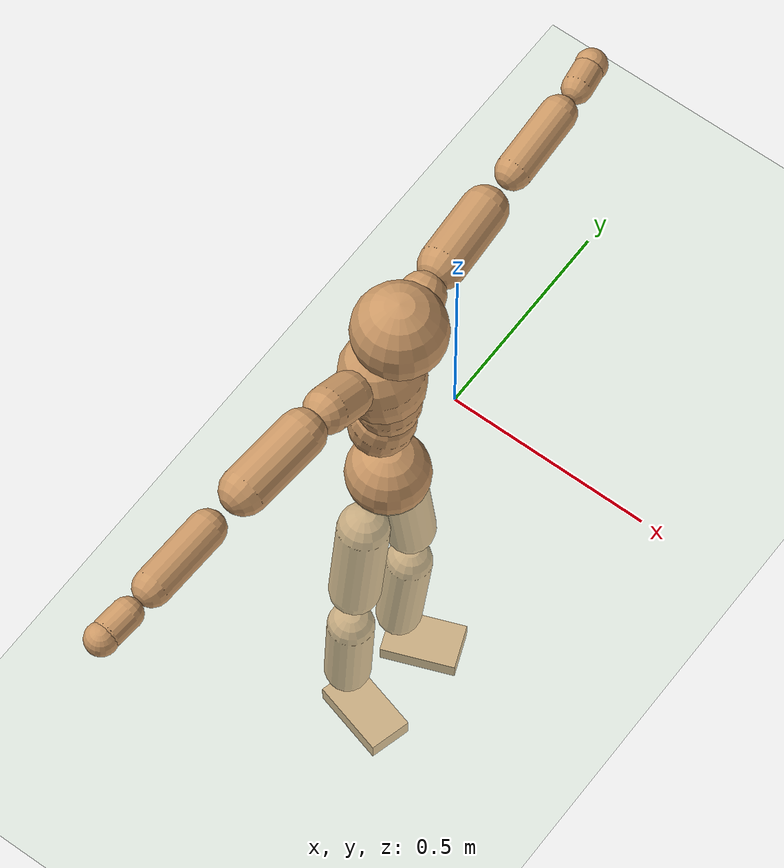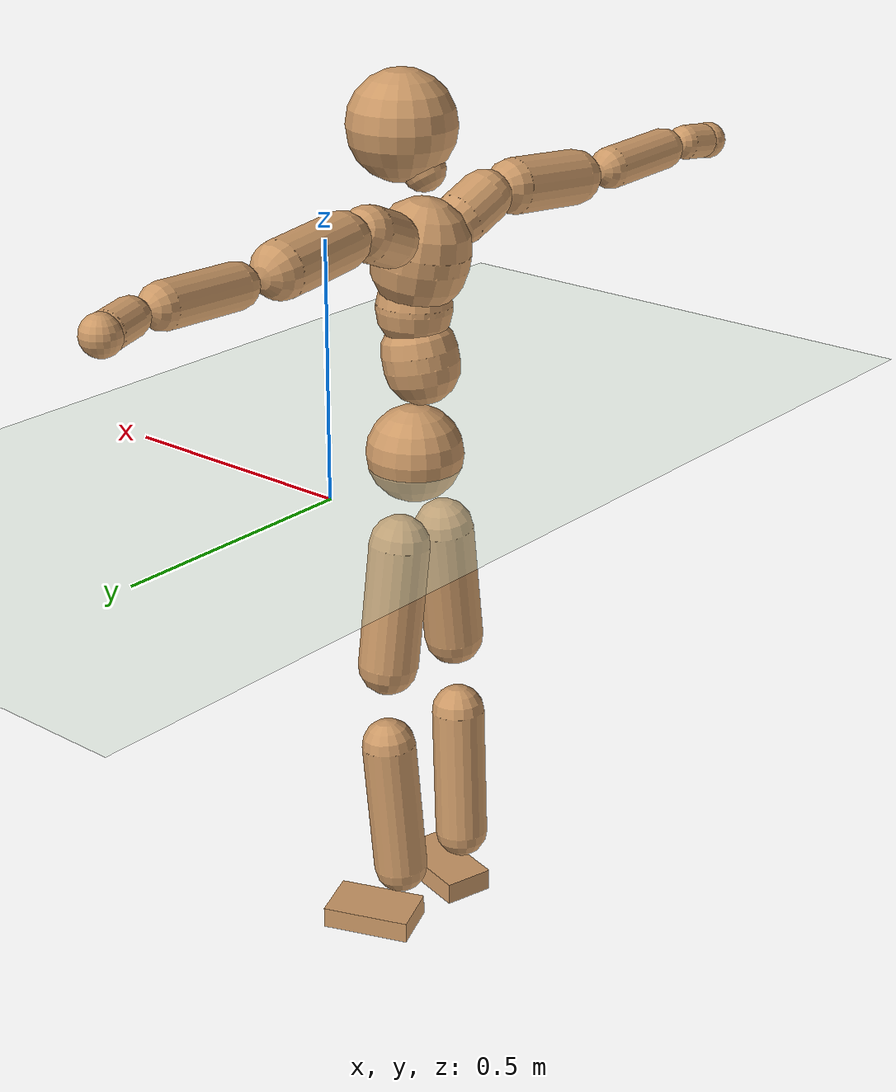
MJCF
<mujoco model="humanoid">
  <compiler coordinate="local"/>
  <default>
    <joint damping="0.0" armature="0.01" stiffness="0.0" limited="true"/>
    <geom conaffinity="1" condim="3" contype="7" margin="0.001" rgba="0.8 0.6 .4 1"/>
  </default>
  <asset>
    <texture type="skybox" builtin="gradient" rgb1=".4 .5 .6" rgb2="0 0 0" width="100" height="100"/>
    <texture builtin="flat" height="1278" mark="cross" markrgb="1 1 1" name="texgeom" random="0.01" rgb1="0.8 0.6 0.4" rgb2="0.8 0.6 0.4" type="cube" width="127"/>
    <texture builtin="checker" height="100" name="texplane" rgb1="0 0 0" rgb2="0.8 0.8 0.8" type="2d" width="100"/>
    <material name="MatPlane" reflectance="0.5" shininess="1" specular="1" texrepeat="60 60" texture="texplane"/>
    <material name="geom" texture="texgeom" texuniform="true"/>
  </asset>
  <worldbody>
    <light cutoff="100" diffuse="1 1 1" dir="-0 0 -1.3" directional="true" exponent="1" pos="0 0 1.3" specular=".1 .1 .1"/>
    <geom conaffinity="1" condim="3" name="floor" pos="0 0 0" rgba="0.8 0.9 0.8 1" size="100 100 .2" type="plane" material="MatPlane"/>
    <body name="Pelvis" pos="-0.0019 -0.2404 0.0233">
      <freejoint name="Pelvis"/>
      <geom type="sphere" contype="1" conaffinity="1" density="500" size="0.0964" pos="0.0000 0.0000 0.0000" name="Pelvis"/>
      <body name="L_Hip" pos="-0.0191 0.0573 -0.0847">
        <joint name="L_Hip_x" type="hinge" pos="0 0 0" axis="1 0 0" stiffness="800" damping="80" armature="0.02" range="-180.0000 180.0000"/>
        <joint name="L_Hip_y" type="hinge" pos="0 0 0" axis="0 1 0" stiffness="800" damping="80" armature="0.02" range="-180.0000 180.0000"/>
        <joint name="L_Hip_z" type="hinge" pos="0 0 0" axis="0 0 1" stiffness="800" damping="80" armature="0.02" range="-180.0000 180.0000"/>
        <geom type="capsule" contype="1" conaffinity="1" density="500" fromto="0.0019 0.0097 -0.0838 0.0078 0.0388 -0.3351" size="0.0605" name="L_Hip"/>
        <body name="L_Knee" pos="0.0097 0.0485 -0.4189">
          <joint name="L_Knee_x" type="hinge" pos="0 0 0" axis="1 0 0" stiffness="800" damping="80" armature="0.02" range="-180.0000 180.0000"/>
          <joint name="L_Knee_y" type="hinge" pos="0 0 0" axis="0 1 0" stiffness="800" damping="80" armature="0.02" range="-180.0000 180.0000"/>
          <joint name="L_Knee_z" type="hinge" pos="0 0 0" axis="0 0 1" stiffness="800" damping="80" armature="0.02" range="-180.0000 180.0000"/>
          <geom type="capsule" contype="1" conaffinity="1" density="500" fromto="-0.0075 -0.0030 -0.0928 -0.0298 -0.0118 -0.3714" size="0.0544" name="L_Knee"/>
          <body name="L_Ankle" pos="-0.0373 -0.0148 -0.4642">
            <joint name="L_Ankle_x" type="hinge" pos="0 0 0" axis="1 0 0" stiffness="800" damping="80" armature="0.02" range="-180.0000 180.0000"/>
            <joint name="L_Ankle_y" type="hinge" pos="0 0 0" axis="0 1 0" stiffness="800" damping="80" armature="0.02" range="-180.0000 180.0000"/>
            <joint name="L_Ankle_z" type="hinge" pos="0 0 0" axis="0 0 1" stiffness="800" damping="80" armature="0.02" range="-180.0000 180.0000"/>
            <geom type="box" contype="1" conaffinity="1" density="500" pos="0.0631 0.0246 -0.0326" size="0.0905 0.056 0.0217" quat="0.9828 0.0000 0.0000 0.1849" name="L_Ankle"/>
            <body name="L_Toe" pos="0.1262 0.0492 -0.0651">
              <joint name="L_Toe_x" type="hinge" pos="0 0 0" axis="1 0 0" stiffness="500" damping="50" armature="0.02" range="-180.0000 180.0000"/>
              <joint name="L_Toe_y" type="hinge" pos="0 0 0" axis="0 1 0" stiffness="500" damping="50" armature="0.02" range="-180.0000 180.0000"/>
              <joint name="L_Toe_z" type="hinge" pos="0 0 0" axis="0 0 1" stiffness="500" damping="50" armature="0.02" range="-180.0000 180.0000"/>
              <geom type="box" contype="1" conaffinity="1" density="500" pos="0.0000 0.0000 0.0334" size="0.0011 0.0026 0.0011" quat="0.9820 0.0000 0.0000 0.1889" name="L_Toe"/>
            </body>
          </body>
        </body>
      </body>
      <body name="R_Hip" pos="-0.0152 -0.0587 -0.0936">
        <joint name="R_Hip_x" type="hinge" pos="0 0 0" axis="1 0 0" stiffness="800" damping="80" armature="0.02" range="-180.0000 180.0000"/>
        <joint name="R_Hip_y" type="hinge" pos="0 0 0" axis="0 1 0" stiffness="800" damping="80" armature="0.02" range="-180.0000 180.0000"/>
        <joint name="R_Hip_z" type="hinge" pos="0 0 0" axis="0 0 1" stiffness="800" damping="80" armature="0.02" range="-180.0000 180.0000"/>
        <geom type="capsule" contype="1" conaffinity="1" density="500" fromto="-0.0009 -0.0100 -0.0830 -0.0037 -0.0400 -0.3321" size="0.0599" name="R_Hip"/>
        <body name="R_Knee" pos="-0.0046 -0.05 -0.4151">
          <joint name="R_Knee_x" type="hinge" pos="0 0 0" axis="1 0 0" stiffness="800" damping="80" armature="0.02" range="-180.0000 180.0000"/>
          <joint name="R_Knee_y" type="hinge" pos="0 0 0" axis="0 1 0" stiffness="800" damping="80" armature="0.02" range="-180.0000 180.0000"/>
          <joint name="R_Knee_z" type="hinge" pos="0 0 0" axis="0 0 1" stiffness="800" damping="80" armature="0.02" range="-180.0000 180.0000"/>
          <geom type="capsule" contype="1" conaffinity="1" density="500" fromto="-0.0069 0.0039 -0.0915 -0.0275 0.0157 -0.3659" size="0.0547" name="R_Knee"/>
          <body name="R_Ankle" pos="-0.0344 0.0197 -0.4574">
            <joint name="R_Ankle_x" type="hinge" pos="0 0 0" axis="1 0 0" stiffness="800" damping="80" armature="0.02" range="-180.0000 180.0000"/>
            <joint name="R_Ankle_y" type="hinge" pos="0 0 0" axis="0 1 0" stiffness="800" damping="80" armature="0.02" range="-180.0000 180.0000"/>
            <joint name="R_Ankle_z" type="hinge" pos="0 0 0" axis="0 0 1" stiffness="800" damping="80" armature="0.02" range="-180.0000 180.0000"/>
            <geom type="box" contype="1" conaffinity="1" density="500" pos="0.0680 -0.0185 -0.0338" size="0.0955 0.0521 0.0228" quat="0.9912 0.0000 0.0000 -0.1322" name="R_Ankle"/>
            <body name="R_Toe" pos="0.1359 -0.0369 -0.0676">
              <joint name="R_Toe_x" type="hinge" pos="0 0 0" axis="1 0 0" stiffness="500" damping="50" armature="0.02" range="-180.0000 180.0000"/>
              <joint name="R_Toe_y" type="hinge" pos="0 0 0" axis="0 1 0" stiffness="500" damping="50" armature="0.02" range="-180.0000 180.0000"/>
              <joint name="R_Toe_z" type="hinge" pos="0 0 0" axis="0 0 1" stiffness="500" damping="50" armature="0.02" range="-180.0000 180.0000"/>
              <geom type="box" contype="1" conaffinity="1" density="500" pos="0.0000 0.0000 0.0344" size="0.0011 0.0025 0.0012" quat="0.9923 0.0000 0.0000 -0.1236" name="R_Toe"/>
            </body>
          </body>
        </body>
      </body>
      <body name="Torso" pos="-0.0359 0.005 0.1278">
        <joint name="Torso_x" type="hinge" pos="0 0 0" axis="1 0 0" stiffness="1000" damping="100" armature="0.02" range="-180.0000 180.0000"/>
        <joint name="Torso_y" type="hinge" pos="0 0 0" axis="0 1 0" stiffness="1000" damping="100" armature="0.02" range="-180.0000 180.0000"/>
        <joint name="Torso_z" type="hinge" pos="0 0 0" axis="0 0 1" stiffness="1000" damping="100" armature="0.02" range="-180.0000 180.0000"/>
        <geom type="capsule" contype="1" conaffinity="1" density="500" fromto="0.0175 0.0028 0.0849 0.0117 0.0019 0.0566" size="0.074307" name="Torso"/>
        <body name="Spine" pos="0.0292 0.0046 0.1415">
          <joint name="Spine_x" type="hinge" pos="0 0 0" axis="1 0 0" stiffness="1000" damping="100" armature="0.02" range="-180.0000 180.0000"/>
          <joint name="Spine_y" type="hinge" pos="0 0 0" axis="0 1 0" stiffness="1000" damping="100" armature="0.02" range="-180.0000 180.0000"/>
          <joint name="Spine_z" type="hinge" pos="0 0 0" axis="0 0 1" stiffness="1000" damping="100" armature="0.02" range="-180.0000 180.0000"/>
          <geom type="capsule" contype="1" conaffinity="1" density="500" fromto="0.0005 -0.0017 0.0342 0.0004 -0.0011 0.0228" size="0.073563" name="Spine"/>
          <body name="Chest" pos="0.0009 -0.0028 0.0569">
            <joint name="Chest_x" type="hinge" pos="0 0 0" axis="1 0 0" stiffness="1000" damping="100" armature="0.02" range="-180.0000 180.0000"/>
            <joint name="Chest_y" type="hinge" pos="0 0 0" axis="0 1 0" stiffness="1000" damping="100" armature="0.02" range="-180.0000 180.0000"/>
            <joint name="Chest_z" type="hinge" pos="0 0 0" axis="0 0 1" stiffness="1000" damping="100" armature="0.02" range="-180.0000 180.0000"/>
            <geom type="capsule" contype="1" conaffinity="1" density="500" fromto="-0.0139 -0.0048 0.0893 -0.0093 -0.0032 0.0596" size="0.094953" name="Chest"/>
            <body name="Neck" pos="-0.0253 -0.0127 0.2155">
              <joint name="Neck_x" type="hinge" pos="0 0 0" axis="1 0 0" stiffness="500" damping="50" armature="0.02" range="-180.0000 180.0000"/>
              <joint name="Neck_y" type="hinge" pos="0 0 0" axis="0 1 0" stiffness="500" damping="50" armature="0.02" range="-180.0000 180.0000"/>
              <joint name="Neck_z" type="hinge" pos="0 0 0" axis="0 0 1" stiffness="500" damping="50" armature="0.02" range="-180.0000 180.0000"/>
              <geom type="capsule" contype="1" conaffinity="1" density="500" fromto="0.0114 0.0021 0.0192 0.0454 0.0082 0.0768" size="0.042129" name="Neck"/>
              <body name="Head" pos="0.0568 0.0103 0.096">
                <joint name="Head_x" type="hinge" pos="0 0 0" axis="1 0 0" stiffness="500" damping="50" armature="0.02" range="-180.0000 180.0000"/>
                <joint name="Head_y" type="hinge" pos="0 0 0" axis="0 1 0" stiffness="500" damping="50" armature="0.02" range="-180.0000 180.0000"/>
                <joint name="Head_z" type="hinge" pos="0 0 0" axis="0 0 1" stiffness="500" damping="50" armature="0.02" range="-180.0000 180.0000"/>
                <geom type="sphere" contype="1" conaffinity="1" density="500" size="0.1050" pos="0.0000 0.0000 0.0000" name="Head"/>
              </body>
            </body>
            <body name="L_Thorax" pos="-0.0206 0.0712 0.1164">
              <joint name="L_Thorax_x" type="hinge" pos="0 0 0" axis="1 0 0" stiffness="500" damping="50" armature="0.02" range="-180.0000 180.0000"/>
              <joint name="L_Thorax_y" type="hinge" pos="0 0 0" axis="0 1 0" stiffness="500" damping="50" armature="0.02" range="-180.0000 180.0000"/>
              <joint name="L_Thorax_z" type="hinge" pos="0 0 0" axis="0 0 1" stiffness="500" damping="50" armature="0.02" range="-180.0000 180.0000"/>
              <geom type="capsule" contype="1" conaffinity="1" density="500" fromto="-0.0035 0.0237 0.0096 -0.0139 0.0950 0.0384" size="0.0525" name="L_Thorax"/>
              <body name="L_Shoulder" pos="-0.0174 0.1187 0.048">
                <joint name="L_Shoulder_x" type="hinge" pos="0 0 0" axis="1 0 0" stiffness="500" damping="50" armature="0.02" range="-720.0000 720.0000"/>
                <joint name="L_Shoulder_y" type="hinge" pos="0 0 0" axis="0 1 0" stiffness="500" damping="50" armature="0.02" range="-720.0000 720.0000"/>
                <joint name="L_Shoulder_z" type="hinge" pos="0 0 0" axis="0 0 1" stiffness="500" damping="50" armature="0.02" range="-720.0000 720.0000"/>
                <geom type="capsule" contype="1" conaffinity="1" density="500" fromto="-0.0045 0.0562 -0.0039 -0.0180 0.2250 -0.0156" size="0.0535" name="L_Shoulder"/>
                <body name="L_Elbow" pos="-0.0224 0.2812 -0.0196">
                  <joint name="L_Elbow_x" type="hinge" pos="0 0 0" axis="1 0 0" stiffness="500" damping="50" armature="0.02" range="-720.0000 720.0000"/>
                  <joint name="L_Elbow_y" type="hinge" pos="0 0 0" axis="0 1 0" stiffness="500" damping="50" armature="0.02" range="-720.0000 720.0000"/>
                  <joint name="L_Elbow_z" type="hinge" pos="0 0 0" axis="0 0 1" stiffness="500" damping="50" armature="0.02" range="-720.0000 720.0000"/>
                  <geom type="capsule" contype="1" conaffinity="1" density="500" fromto="-0.0019 0.0569 0.0027 -0.0077 0.2276 0.0110" size="0.0415" name="L_Elbow"/>
                  <body name="L_Wrist" pos="-0.0097 0.2845 0.0137">
                    <joint name="L_Wrist_x" type="hinge" pos="0 0 0" axis="1 0 0" stiffness="300" damping="30" armature="0.02" range="-180.0000 180.0000"/>
                    <joint name="L_Wrist_y" type="hinge" pos="0 0 0" axis="0 1 0" stiffness="300" damping="30" armature="0.02" range="-180.0000 180.0000"/>
                    <joint name="L_Wrist_z" type="hinge" pos="0 0 0" axis="0 0 1" stiffness="300" damping="30" armature="0.02" range="-180.0000 180.0000"/>
                    <geom type="capsule" contype="1" conaffinity="1" density="500" fromto="-0.0033 0.0179 -0.0022 -0.0132 0.0717 -0.0086" size="0.0349" name="L_Wrist"/>
                    <body name="L_Hand" pos="-0.0165 0.0897 -0.0108">
                      <joint name="L_Hand_x" type="hinge" pos="0 0 0" axis="1 0 0" stiffness="300" damping="30" armature="0.02" range="-180.0000 180.0000"/>
                      <joint name="L_Hand_y" type="hinge" pos="0 0 0" axis="0 1 0" stiffness="300" damping="30" armature="0.02" range="-180.0000 180.0000"/>
                      <joint name="L_Hand_z" type="hinge" pos="0 0 0" axis="0 0 1" stiffness="300" damping="30" armature="0.02" range="-180.0000 180.0000"/>
                      <geom type="sphere" contype="1" conaffinity="1" density="500" size="0.0367" pos="0.0000 0.0000 0.0000" name="L_Hand"/>
                    </body>
                  </body>
                </body>
              </body>
            </body>
            <body name="R_Thorax" pos="-0.0235 -0.0825 0.1149">
              <joint name="R_Thorax_x" type="hinge" pos="0 0 0" axis="1 0 0" stiffness="500" damping="50" armature="0.02" range="-180.0000 180.0000"/>
              <joint name="R_Thorax_y" type="hinge" pos="0 0 0" axis="0 1 0" stiffness="500" damping="50" armature="0.02" range="-180.0000 180.0000"/>
              <joint name="R_Thorax_z" type="hinge" pos="0 0 0" axis="0 0 1" stiffness="500" damping="50" armature="0.02" range="-180.0000 180.0000"/>
              <geom type="capsule" contype="1" conaffinity="1" density="500" fromto="-0.0013 -0.0221 0.0098 -0.0051 -0.0885 0.0393" size="0.0529" name="R_Thorax"/>
              <body name="R_Shoulder" pos="-0.0063 -0.1107 0.0491">
                <joint name="R_Shoulder_x" type="hinge" pos="0 0 0" axis="1 0 0" stiffness="500" damping="50" armature="0.02" range="-720.0000 720.0000"/>
                <joint name="R_Shoulder_y" type="hinge" pos="0 0 0" axis="0 1 0" stiffness="500" damping="50" armature="0.02" range="-720.0000 720.0000"/>
                <joint name="R_Shoulder_z" type="hinge" pos="0 0 0" axis="0 0 1" stiffness="500" damping="50" armature="0.02" range="-720.0000 720.0000"/>
                <geom type="capsule" contype="1" conaffinity="1" density="500" fromto="-0.0059 -0.0568 -0.0040 -0.0235 -0.2273 -0.0161" size="0.0548" name="R_Shoulder"/>
                <body name="R_Elbow" pos="-0.0293 -0.2841 -0.0201">
                  <joint name="R_Elbow_x" type="hinge" pos="0 0 0" axis="1 0 0" stiffness="500" damping="50" armature="0.02" range="-720.0000 720.0000"/>
                  <joint name="R_Elbow_y" type="hinge" pos="0 0 0" axis="0 1 0" stiffness="500" damping="50" armature="0.02" range="-720.0000 720.0000"/>
                  <joint name="R_Elbow_z" type="hinge" pos="0 0 0" axis="0 0 1" stiffness="500" damping="50" armature="0.02" range="-720.0000 720.0000"/>
                  <geom type="capsule" contype="1" conaffinity="1" density="500" fromto="-0.0016 -0.0584 0.0024 -0.0065 -0.2337 0.0096" size="0.0425" name="R_Elbow"/>
                  <body name="R_Wrist" pos="-0.0081 -0.2921 0.012">
                    <joint name="R_Wrist_x" type="hinge" pos="0 0 0" axis="1 0 0" stiffness="300" damping="30" armature="0.02" range="-180.0000 180.0000"/>
                    <joint name="R_Wrist_y" type="hinge" pos="0 0 0" axis="0 1 0" stiffness="300" damping="30" armature="0.02" range="-180.0000 180.0000"/>
                    <joint name="R_Wrist_z" type="hinge" pos="0 0 0" axis="0 0 1" stiffness="300" damping="30" armature="0.02" range="-180.0000 180.0000"/>
                    <geom type="capsule" contype="1" conaffinity="1" density="500" fromto="-0.0022 -0.0184 -0.0018 -0.0087 -0.0736 -0.0071" size="0.0357" name="R_Wrist"/>
                    <body name="R_Hand" pos="-0.0108 -0.092 -0.0089">
                      <joint name="R_Hand_x" type="hinge" pos="0 0 0" axis="1 0 0" stiffness="300" damping="30" armature="0.02" range="-180.0000 180.0000"/>
                      <joint name="R_Hand_y" type="hinge" pos="0 0 0" axis="0 1 0" stiffness="300" damping="30" armature="0.02" range="-180.0000 180.0000"/>
                      <joint name="R_Hand_z" type="hinge" pos="0 0 0" axis="0 0 1" stiffness="300" damping="30" armature="0.02" range="-180.0000 180.0000"/>
                      <geom type="sphere" contype="1" conaffinity="1" density="500" size="0.0373" pos="0.0000 0.0000 0.0000" name="R_Hand"/>
                    </body>
                  </body>
                </body>
              </body>
            </body>
          </body>
        </body>
      </body>
    </body>
  </worldbody>
  <actuator>
    <motor name="L_Hip_x" joint="L_Hip_x" gear="500"/>
    <motor name="L_Hip_y" joint="L_Hip_y" gear="500"/>
    <motor name="L_Hip_z" joint="L_Hip_z" gear="500"/>
    <motor name="L_Knee_x" joint="L_Knee_x" gear="500"/>
    <motor name="L_Knee_y" joint="L_Knee_y" gear="500"/>
    <motor name="L_Knee_z" joint="L_Knee_z" gear="500"/>
    <motor name="L_Ankle_x" joint="L_Ankle_x" gear="500"/>
    <motor name="L_Ankle_y" joint="L_Ankle_y" gear="500"/>
    <motor name="L_Ankle_z" joint="L_Ankle_z" gear="500"/>
    <motor name="L_Toe_x" joint="L_Toe_x" gear="500"/>
    <motor name="L_Toe_y" joint="L_Toe_y" gear="500"/>
    <motor name="L_Toe_z" joint="L_Toe_z" gear="500"/>
    <motor name="R_Hip_x" joint="R_Hip_x" gear="500"/>
    <motor name="R_Hip_y" joint="R_Hip_y" gear="500"/>
    <motor name="R_Hip_z" joint="R_Hip_z" gear="500"/>
    <motor name="R_Knee_x" joint="R_Knee_x" gear="500"/>
    <motor name="R_Knee_y" joint="R_Knee_y" gear="500"/>
    <motor name="R_Knee_z" joint="R_Knee_z" gear="500"/>
    <motor name="R_Ankle_x" joint="R_Ankle_x" gear="500"/>
    <motor name="R_Ankle_y" joint="R_Ankle_y" gear="500"/>
    <motor name="R_Ankle_z" joint="R_Ankle_z" gear="500"/>
    <motor name="R_Toe_x" joint="R_Toe_x" gear="500"/>
    <motor name="R_Toe_y" joint="R_Toe_y" gear="500"/>
    <motor name="R_Toe_z" joint="R_Toe_z" gear="500"/>
    <motor name="Torso_x" joint="Torso_x" gear="500"/>
    <motor name="Torso_y" joint="Torso_y" gear="500"/>
    <motor name="Torso_z" joint="Torso_z" gear="500"/>
    <motor name="Spine_x" joint="Spine_x" gear="500"/>
    <motor name="Spine_y" joint="Spine_y" gear="500"/>
    <motor name="Spine_z" joint="Spine_z" gear="500"/>
    <motor name="Chest_x" joint="Chest_x" gear="500"/>
    <motor name="Chest_y" joint="Chest_y" gear="500"/>
    <motor name="Chest_z" joint="Chest_z" gear="500"/>
    <motor name="Neck_x" joint="Neck_x" gear="500"/>
    <motor name="Neck_y" joint="Neck_y" gear="500"/>
    <motor name="Neck_z" joint="Neck_z" gear="500"/>
    <motor name="Head_x" joint="Head_x" gear="500"/>
    <motor name="Head_y" joint="Head_y" gear="500"/>
    <motor name="Head_z" joint="Head_z" gear="500"/>
    <motor name="L_Thorax_x" joint="L_Thorax_x" gear="500"/>
    <motor name="L_Thorax_y" joint="L_Thorax_y" gear="500"/>
    <motor name="L_Thorax_z" joint="L_Thorax_z" gear="500"/>
    <motor name="L_Shoulder_x" joint="L_Shoulder_x" gear="500"/>
    <motor name="L_Shoulder_y" joint="L_Shoulder_y" gear="500"/>
    <motor name="L_Shoulder_z" joint="L_Shoulder_z" gear="500"/>
    <motor name="L_Elbow_x" joint="L_Elbow_x" gear="500"/>
    <motor name="L_Elbow_y" joint="L_Elbow_y" gear="500"/>
    <motor name="L_Elbow_z" joint="L_Elbow_z" gear="500"/>
    <motor name="L_Wrist_x" joint="L_Wrist_x" gear="500"/>
    <motor name="L_Wrist_y" joint="L_Wrist_y" gear="500"/>
    <motor name="L_Wrist_z" joint="L_Wrist_z" gear="500"/>
    <motor name="L_Hand_x" joint="L_Hand_x" gear="500"/>
    <motor name="L_Hand_y" joint="L_Hand_y" gear="500"/>
    <motor name="L_Hand_z" joint="L_Hand_z" gear="500"/>
    <motor name="R_Thorax_x" joint="R_Thorax_x" gear="500"/>
    <motor name="R_Thorax_y" joint="R_Thorax_y" gear="500"/>
    <motor name="R_Thorax_z" joint="R_Thorax_z" gear="500"/>
    <motor name="R_Shoulder_x" joint="R_Shoulder_x" gear="500"/>
    <motor name="R_Shoulder_y" joint="R_Shoulder_y" gear="500"/>
    <motor name="R_Shoulder_z" joint="R_Shoulder_z" gear="500"/>
    <motor name="R_Elbow_x" joint="R_Elbow_x" gear="500"/>
    <motor name="R_Elbow_y" joint="R_Elbow_y" gear="500"/>
    <motor name="R_Elbow_z" joint="R_Elbow_z" gear="500"/>
    <motor name="R_Wrist_x" joint="R_Wrist_x" gear="500"/>
    <motor name="R_Wrist_y" joint="R_Wrist_y" gear="500"/>
    <motor name="R_Wrist_z" joint="R_Wrist_z" gear="500"/>
    <motor name="R_Hand_x" joint="R_Hand_x" gear="500"/>
    <motor name="R_Hand_y" joint="R_Hand_y" gear="500"/>
    <motor name="R_Hand_z" joint="R_Hand_z" gear="500"/>
  </actuator>
  <contact>
    <exclude body1="Torso" body2="Chest"/>
    <exclude body1="Head" body2="Chest"/>
    <exclude body1="R_Knee" body2="R_Toe"/>
    <exclude body1="R_Knee" body2="L_Ankle"/>
    <exclude body1="R_Knee" body2="L_Toe"/>
    <exclude body1="L_Knee" body2="L_Toe"/>
    <exclude body1="L_Knee" body2="R_Ankle"/>
    <exclude body1="L_Knee" body2="R_Toe"/>
    <exclude body1="L_Shoulder" body2="Chest"/>
    <exclude body1="R_Shoulder" body2="Chest"/>
  </contact>
  <sensor/>
  <size njmax="700" nconmax="700"/>
</mujoco>
